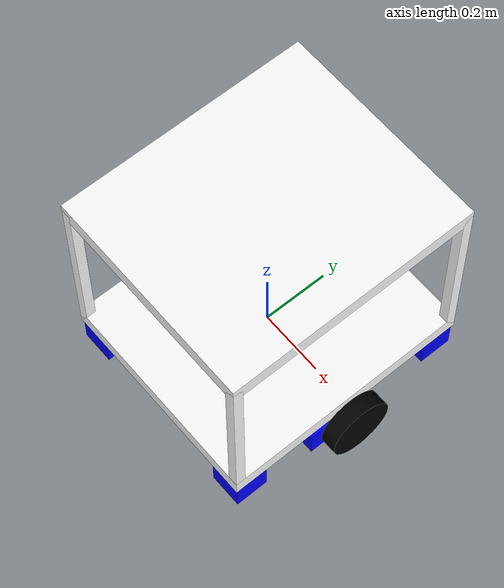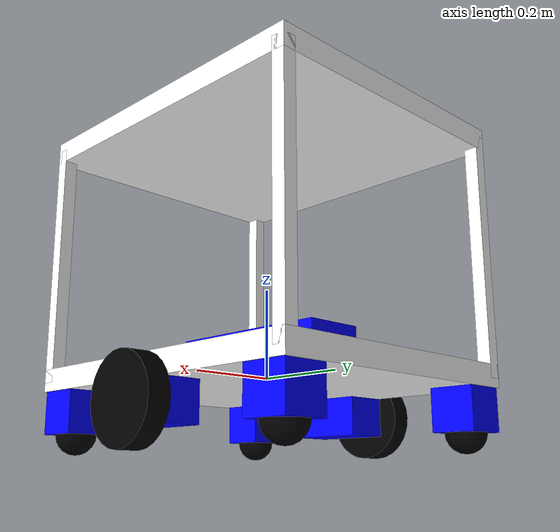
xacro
<?xml version="1.0"?>
<robot xmlns:xacro="http://www.ros.org/wiki/xacro" name="urdf_test">

    <!--macros-->
    <xacro:include filename="imertial_macros.xacro"/>

    <!--color-->
    <material name="white">
        <color rgba="1 1 1 1"/>
    </material>

    <material name="black">
        <color rgba="0 0 0 1"/>
    </material>

    <material name="blue">
        <color rgba="0 0 1 1"/>
    </material>

    <material name="red">
        <color rgba="1 0 0 1"/>
    </material>

    <!--base link-->
    <link name="base_link">
    </link>

    <!--BASE FOOTPRINT LINK-->

    <joint name="base_footprint_joint" type="fixed">
        <parent link="base_link"/>
        <child link="base_footprint"/>
        <origin xyz="0.0 0.0 0.0" rpy="0.0 0.0 0.0"/>
    </joint>

    <link name="base_footprint">

    </link>

    <!--under body-->

    <joint name="chassis_joint" type="fixed">
        <parent link="base_link"/>
        <child link="chassis"/>
    </joint>

    <link name="chassis">
        <visual>
            <geometry>
                <box size="0.66 0.76 0.05"/>
            </geometry>
            <material name="white"/>
        </visual>
        <collision>
            <geometry>
                <box size="0.66 0.76 0.05"/>
            </geometry>
        </collision>
        <xacro:inertial_box mass="7.2" x="0.66" y="0.76" z="0.05">
            <origin xyz="0 0 0" rpy="0 0 0"/>
        </xacro:inertial_box>
    </link>

    <gazebo reference="chassis">
        <material>Gazebo/White</material>
    </gazebo>

    <!--over body-->

    <joint name="chassis_joint2" type="fixed">
        <parent link="base_link"/>
        <child link="chassis2"/>
        <origin xyz="0 0 0.55"/>
    </joint>

    <link name="chassis2">
        <visual>
            <geometry>
                <box size="0.66 0.76 0.05"/>
            </geometry>
            <material name="white"/>
        </visual>
        <collision>
            <geometry>
                <box size="0.66 0.76 0.05"/>
            </geometry>
        </collision>
        <xacro:inertial_box mass="4" x="0.66" y="0.76" z="0.05">
            <origin xyz="0 0 0" rpy="0 0 0"/>
        </xacro:inertial_box>
    </link>

    <gazebo reference="chassis2">
        <material>Gazebo/White</material>
    </gazebo>

    <!--left motor-->

    <joint name="motor_joint1" type="fixed">
        <parent link="base_link"/>
        <child link="left_motor"/>
        <origin xyz="-0.285 -0.04 -0.07"/>
    </joint>

    <link name="left_motor">
        <visual>
            <geometry>
                <box size="0.105 0.18 0.09"/>
            </geometry>
            <material name="blue"/>
        </visual>
        <collision>
            <geometry>
                <box size="0.105 0.18 0.09"/>
            </geometry>
        </collision>
        <xacro:inertial_box mass="4.24" x="0.105" y="0.18" z="0.09">
            <origin xyz="0 0 0" rpy="0 0 0"/>
        </xacro:inertial_box>
    </link>

    <gazebo reference="left_motor">
        <material>Gazebo/Blue</material>
    </gazebo>

    <!--right motor-->

    <joint name="motor_joint2" type="fixed">
        <parent link="base_link"/>
        <child link="right_motor"/>
        <origin xyz="0.285 -0.04 -0.07"/>
    </joint>

    <link name="right_motor">
        <visual>
            <geometry>
                <box size="0.105 0.18 0.09"/>
            </geometry>
            <material name="blue"/>
        </visual>
        <collision>
            <geometry>
                <box size="0.105 0.18 0.09"/>
            </geometry>
        </collision>
        <xacro:inertial_box mass="4.24" x="0.105" y="0.18" z="0.09">
            <origin xyz="0 0 0" rpy="0 0 0"/>
        </xacro:inertial_box>
    </link>

    <gazebo reference="right_motor">
        <material>Gazebo/Blue</material>
    </gazebo>

    <!-- LEFT WHEEL LINK -->

    <joint name="left_wheel_joint" type="continuous">
        <parent link="base_link"/>
        <child link="left_wheel"/>
        <origin xyz="-0.3625 0 -0.07" rpy="-${pi/2} 0 ${pi/2}" />
        <axis xyz="0 0 1"/>
    </joint>

    <link name="left_wheel">
        <visual>
            <geometry>
                <cylinder radius="0.095" length="0.05"/>
            </geometry>
            <material name="black"/>
        </visual>
        <collision>
            <geometry>
                <cylinder radius="0.095" length="0.05"/>
            </geometry>
        </collision>
        <xacro:inertial_cylinder mass="1.3" length="0.05" radius="0.095">
            <origin xyz="0 0 0" rpy="0 0 0"/>
        </xacro:inertial_cylinder>
    </link>

    <gazebo reference="left_wheel">
        <material>Gazebo/Black</material>
    </gazebo>

    <!-- RIGHT WHEEL LINK -->

    <joint name="right_wheel_joint" type="continuous">
        <parent link="base_link"/>
        <child link="right_wheel"/>
        <origin xyz="0.3625 0 -0.07" rpy="${pi/2} 0 ${pi/2}" />
        <axis xyz="0 0 -1"/>
    </joint>

    <link name="right_wheel">
        <visual>
            <geometry>
                <cylinder radius="0.095" length="0.05"/>
            </geometry>
            <material name="black"/>
        </visual>
        <collision>
            <geometry>
                <cylinder radius="0.095" length="0.05"/>
            </geometry>
        </collision>
        <xacro:inertial_cylinder mass="1.3" length="0.05" radius="0.095">
            <origin xyz="0 0 0" rpy="0 0 0"/>
        </xacro:inertial_cylinder>
    </link>

    <gazebo reference="right_wheel">
        <material>Gazebo/Black</material>
    </gazebo>

    <!--caster body1-->

    <joint name="caster_body1_joint" type="fixed">
        <parent link="chassis"/>
        <child link="caster_body1"/>
        <origin xyz="0.276 0.325 -0.07"/>
    </joint>

    <link name="caster_body1">
        <visual>
            <geometry>
                <box size="0.1 0.1 0.1"/>
            </geometry>
            <material name="blue"/>
        </visual>
        <collision>
            <geometry>
                <box size="0.1 0.1 0.1"/>
            </geometry>
        </collision>
        <xacro:inertial_box mass="0.7" x="0.1" y="0.1" z="0.1">
            <origin xyz="0 0 0" rpy="0 0 0"/>
        </xacro:inertial_box>
    </link>

    <gazebo reference="caster_body1">
        <material>Gazebo/Blue</material>
    </gazebo>

    <!-- CASTER WHEEL LINK1 -->

    <joint name="caster_wheel_joint1" type="fixed">
        <parent link="caster_body1"/>
        <child link="caster_wheel1"/>
        <origin xyz="0 0 -0.05"/>
    </joint>

    <link name="caster_wheel1">
        <visual>
            <geometry>
                <sphere radius="0.045"/>
            </geometry>
            <material name="black"/>
        </visual>
        <collision>
            <geometry>
                <sphere radius="0.045"/>
            </geometry>
        </collision>
        <xacro:inertial_sphere mass="0.4" radius="0.045">
            <origin xyz="0 0 0" rpy="0 0 0"/>
        </xacro:inertial_sphere>
    </link>

    <gazebo reference="caster_wheel1">
        <material>Gazebo/Black</material>

        <mu1 value="0.01"/>
        <mu2 value="0.01"/>
    </gazebo>

    <!--caster body2-->

    <joint name="caster_body2_joint" type="fixed">
        <parent link="chassis"/>
        <child link="caster_body2"/>
        <origin xyz="-0.276 0.325 -0.07"/>
    </joint>

    <link name="caster_body2">
        <visual>
            <geometry>
                <box size="0.1 0.1 0.1"/>
            </geometry>
            <material name="blue"/>
        </visual>
        <collision>
            <geometry>
                <box size="0.1 0.1 0.1"/>
            </geometry>
        </collision>
        <xacro:inertial_box mass="0.7" x="0.1" y="0.1" z="0.1">
            <origin xyz="0 0 0" rpy="0 0 0"/>
        </xacro:inertial_box>
    </link>

    <gazebo reference="caster_body2">
        <material>Gazebo/Blue</material>
    </gazebo>

    <!-- CASTER WHEEL LINK2 -->

    <joint name="caster_wheel_joint2" type="fixed">
        <parent link="caster_body2"/>
        <child link="caster_wheel2"/>
        <origin xyz="0 0 -0.05"/>
    </joint>

    <link name="caster_wheel2">
        <visual>
            <geometry>
                <sphere radius="0.045"/>
            </geometry>
            <material name="black"/>
        </visual>
        <collision>
            <geometry>
                <sphere radius="0.045"/>
            </geometry>
        </collision>
        <xacro:inertial_sphere mass="0.4" radius="0.045">
            <origin xyz="0 0 0" rpy="0 0 0"/>
        </xacro:inertial_sphere>
    </link>

    <gazebo reference="caster_wheel2">
        <material>Gazebo/Black</material>

        <mu1 value="0.01"/>
        <mu2 value="0.01"/>
    </gazebo>

    <!--caster body3-->

    <joint name="caster_body3_joint" type="fixed">
        <parent link="chassis"/>
        <child link="caster_body3"/>
        <origin xyz="0.276 -0.325 -0.07"/>
    </joint>

    <link name="caster_body3">
        <visual>
            <geometry>
                <box size="0.1 0.1 0.1"/>
            </geometry>
            <material name="blue"/>
        </visual>
        <collision>
            <geometry>
                <box size="0.1 0.1 0.1"/>
            </geometry>
        </collision>
        <xacro:inertial_box mass="0.7" x="0.1" y="0.1" z="0.1">
            <origin xyz="0 0 0" rpy="0 0 0"/>
        </xacro:inertial_box>
    </link>

    <gazebo reference="caster_body3">
        <material>Gazebo/Blue</material>
    </gazebo>

    <!-- CASTER WHEEL LINK3 -->

    <joint name="caster_wheel_joint3" type="fixed">
        <parent link="caster_body3"/>
        <child link="caster_wheel3"/>
        <origin xyz="0 0 -0.05"/>
    </joint>

    <link name="caster_wheel3">
        <visual>
            <geometry>
                <sphere radius="0.045"/>
            </geometry>
            <material name="black"/>
        </visual>
        <collision>
            <geometry>
                <sphere radius="0.045"/>
            </geometry>
        </collision>
        <xacro:inertial_sphere mass="0.4" radius="0.045">
            <origin xyz="0 0 0" rpy="0 0 0"/>
        </xacro:inertial_sphere>
    </link>

    <gazebo reference="caster_wheel3">
        <material>Gazebo/Black</material>

        <mu1 value="0.01"/>
        <mu2 value="0.01"/>
    </gazebo>

    <!--caster body4-->

    <joint name="caster_body4_joint" type="fixed">
        <parent link="chassis"/>
        <child link="caster_body4"/>
        <origin xyz="-0.276 -0.325 -0.07"/>
    </joint>

    <link name="caster_body4">
        <visual>
            <geometry>
                <box size="0.1 0.1 0.1"/>
            </geometry>
            <material name="blue"/>
        </visual>
        <collision>
            <geometry>
                <box size="0.1 0.1 0.1"/>
            </geometry>
        </collision>
        <xacro:inertial_box mass="0.7" x="0.1" y="0.1" z="0.1">
            <origin xyz="0 0 0" rpy="0 0 0"/>
        </xacro:inertial_box>
    </link>

    <gazebo reference="caster_body4">
        <material>Gazebo/Blue</material>
    </gazebo>

    <!-- CASTER WHEEL LINK4 -->

    <joint name="caster_wheel_joint4" type="fixed">
        <parent link="caster_body4"/>
        <child link="caster_wheel4"/>
        <origin xyz="0 0 -0.05"/>
    </joint>

    <link name="caster_wheel4">
        <visual>
            <geometry>
                <sphere radius="0.045"/>
            </geometry>
            <material name="black"/>
        </visual>
        <collision>
            <geometry>
                <sphere radius="0.045"/>
            </geometry>
        </collision>
        <xacro:inertial_sphere mass="0.4" radius="0.045">
            <origin xyz="0 0 0" rpy="0 0 0"/>
        </xacro:inertial_sphere>
    </link>

    <gazebo reference="caster_wheel4">
        <material>Gazebo/Black</material>

        <mu1 value="0.01"/>
        <mu2 value="0.01"/>
    </gazebo>

    <!--jeonjang box 0.14 0.4 0.1 -->

    <joint name="jeonjang_joint" type="fixed">
        <parent link="base_link"/>
        <child link="jeonjang"/>
        <origin xyz="0 0 0.05"/>
    </joint>

    <link name="jeonjang">
        <visual>
            <geometry>
                <box size="0.14 0.4 0.1"/>
            </geometry>
            <material name="blue"/>
        </visual>
        <collision>
            <geometry>
                <box size="0.14 0.4 0.1"/>
            </geometry>
        </collision>
        <xacro:inertial_box mass="8" x="0.14" y="0.4" z="0.1">
            <origin xyz="0 0 0" rpy="0 0 0"/>
        </xacro:inertial_box>
    </link>

    <gazebo reference="jeonjang">
        <material>Gazebo/Blue</material>
    </gazebo>

    <!--gidung1-->

    <joint name="gidung1_link" type="fixed">
        <parent link="chassis"/>
        <child link="gidung1"/>
        <origin xyz="0.315 0.365 0.275"/>
    </joint>

    <link name="gidung1">
        <visual>
            <geometry>
                <box size="0.03 0.03 0.56"/>
            </geometry>
            <material name="white"/>
        </visual>
        <collision>
            <geometry>
                <box size="0.03 0.03 0.56"/>
            </geometry>
        </collision>
        <xacro:inertial_box mass="0.8" x="0.03" y="0.03" z="0.56">
            <origin xyz="0 0 0" rpy="0 0 0"/>
        </xacro:inertial_box>
    </link>

    <gazebo reference="gidung1">
        <material>Gazebo/White</material>
    </gazebo>

    <!--gidung2-->

    <joint name="gidung2_link" type="fixed">
        <parent link="chassis"/>
        <child link="gidung2"/>
        <origin xyz="-0.315 0.365 0.275"/>
    </joint>

    <link name="gidung2">
        <visual>
            <geometry>
                <box size="0.03 0.03 0.56"/>
            </geometry>
            <material name="white"/>
        </visual>
        <collision>
            <geometry>
                <box size="0.03 0.03 0.56"/>
            </geometry>
        </collision>
        <xacro:inertial_box mass="0.8" x="0.03" y="0.03" z="0.56">
            <origin xyz="0 0 0" rpy="0 0 0"/>
        </xacro:inertial_box>
    </link>

    <gazebo reference="gidung2">
        <material>Gazebo/White</material>
    </gazebo>

    <!--gidung3-->

    <joint name="gidung3_link" type="fixed">
        <parent link="chassis"/>
        <child link="gidung3"/>
        <origin xyz="0.315 -0.365 0.275"/>
    </joint>

    <link name="gidung3">
        <visual>
            <geometry>
                <box size="0.03 0.03 0.56"/>
            </geometry>
            <material name="white"/>
        </visual>
        <collision>
            <geometry>
                <box size="0.03 0.03 0.56"/>
            </geometry>
        </collision>
        <xacro:inertial_box mass="0.8" x="0.03" y="0.03" z="0.56">
            <origin xyz="0 0 0" rpy="0 0 0"/>
        </xacro:inertial_box>
    </link>

    <gazebo reference="gidung3">
        <material>Gazebo/White</material>
    </gazebo>

    <!--gidung4-->

    <joint name="gidung4_link" type="fixed">
        <parent link="chassis"/>
        <child link="gidung4"/>
        <origin xyz="-0.315 -0.365 0.275"/>
    </joint>

    <link name="gidung4">
        <visual>
            <geometry>
                <box size="0.03 0.03 0.56"/>
            </geometry>
            <material name="white"/>
        </visual>
        <collision>
            <geometry>
                <box size="0.03 0.03 0.56"/>
            </geometry>
        </collision>
        <xacro:inertial_box mass="0.8" x="0.03" y="0.03" z="0.56">
            <origin xyz="0 0 0" rpy="0 0 0"/>
        </xacro:inertial_box>
    </link>

    <gazebo reference="gidung4">
        <material>Gazebo/White</material>
    </gazebo>

</robot>
